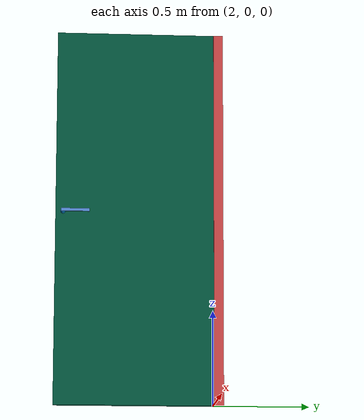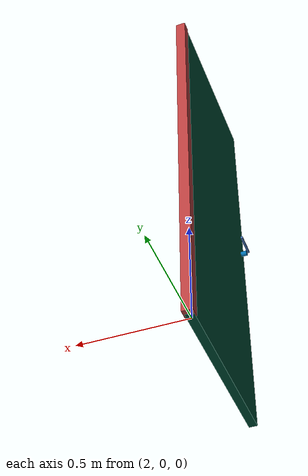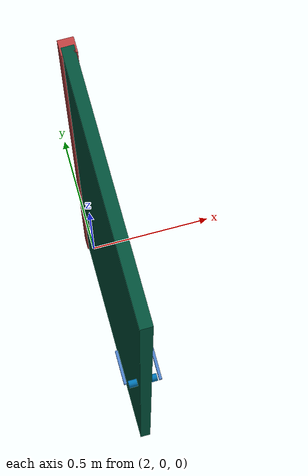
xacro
<?xml version="1.0"?>

<robot name="iai_kitchen" xmlns:xacro="http://ros.org/wiki/xacro">

  <xacro:include filename="$(find suturo_resources)/urdf/urdf_components/suturo_door.urdf.xacro"/>

  <xacro:property name="pi" value="3.1415926535897931" />
  <xacro:property name="simulated" value="true" />
  <xacro:property name="include_wall_7" value="false"/>
  <xacro:macro name="sphere_inertia" params="radius mass">
    <inertial>
      <origin xyz="0.0 0.0 0.0" rpy="0 0 0"/>
      <mass value="1"/>
      <inertia
          ixx="1" ixy="0.0" ixz="0.0"
          iyy="1" iyz="0.0"
          izz="1"/>
    </inertial>
  </xacro:macro>

  <link name="room_link">
    <xacro:sphere_inertia radius="0" mass="0"/>
  </link>
  <xacro:if value="${simulated}">
    <link name="world"/>
    <joint name="world_room_joint" type="fixed">
      <origin xyz="0.0 0.03 0 " rpy="0 0 0" />
      <parent link="world"/>
      <child link="room_link"/>
    </joint>
  </xacro:if>

  <xacro:suturo_door name="suturo_door_area" parent="room_link"
			height="2"
            width="0.86"
            depth="0.04"
            x="2"
            y="0"
            z="1.0"
            zrot="${-0.5 * pi}"
            door_turn_limit_lower="-1.4"
            door_turn_limit_max="0"
			handle_x= "0.82"
			handle_z="0.02">
  </xacro:suturo_door>

  <gazebo>
    <static>false</static>
  </gazebo>

</robot>

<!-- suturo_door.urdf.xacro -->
<robot name="suturo_door" xmlns:xacro="http://ros.org/wiki/xacro">

  <material name="door_green">
    <color rgba="0 0.31 0.22 1"/>
  </material>

  <material name="hinge_red">
    <color rgba="0.74 0.25 0.25 1"/>
  </material>

  <material name="handle_blue">
    <color rgba="0.3 0.5 0.78 1"/>
  </material>
  <xacro:property name="half_pi" value="1.570796327" />

  <xacro:macro name="suturo_door" params="name parent height width depth x y z zrot door_turn_limit_lower door_turn_limit_max handle_x handle_z">
    <!-- LINKS -->
    <!-- TODO: Remove gravity for door -->

    <link name="${name}:door_center">
      <visual>
        <material name="door_green"/>
        <origin xyz="${width/2} 0 0" rpy="0 0 0" />
        <geometry>
          <box size="${width} ${depth} ${height}" />
        </geometry>
      </visual>
      <collision>
        <origin xyz="${width/2} 0 0" rpy="0 0 0" />
        <geometry>
          <box size="${width} ${depth} ${height}" />
        </geometry>
      </collision>
      <inertial>
        <origin xyz="0 0 0" rpy="0 0 0"/>
        <mass value="1.0"/>
        <inertia ixx="0.1" ixy="0.0" ixz="0.0" iyy="0.1" iyz="0.0" izz="0.1"/>
      </inertial>
    </link>

    <link name="${name}:door_hinge">
      <visual>
        <material name="hinge_red"/>
        <origin xyz="0 0 0" rpy="0 0 0" />
        <geometry>
          <box size="0.05 0.05 ${height}" />
        </geometry>
      </visual>
      <collision>
        <origin xyz="0 0 0" rpy="0 0 0" />
        <geometry>
          <box size="0.05 0.05 ${height}" />
        </geometry>
      </collision>
      <inertial>
        <origin xyz="0 0 0" rpy="0 0 0"/>
        <mass value="1.0"/>
        <inertia ixx="0.1" ixy="0.0" ixz="0.0" iyy="0.1" iyz="0.0" izz="0.1"/>
      </inertial>
    </link>

	<link name="${name}:door_handle_link">
      <visual >
        <origin xyz="0.0 0.0 0.0" rpy="0 0 0" />
        <geometry name="handle_blue">
          <cylinder radius="0.013" length="0.10" />
        </geometry>
      </visual>
      <collision >
        <origin xyz="0.0 0.0 0.0" rpy="0 0 0" />
        <geometry name="handle_collision_geom">
          <cylinder radius="0.013" length="0.10" />
        </geometry>
      </collision>
      <inertial>
        <origin xyz="0 0 0" rpy="0 0 0"/>
        <mass value="1.0"/>
        <inertia ixx="0.1" ixy="0.0" ixz="0.0" iyy="0.1" iyz="0.0" izz="0.1"/>
      </inertial>
    </link>
    <gazebo reference="${name}:door_handle_link">
      <turnGravityOff>true</turnGravityOff>
    </gazebo>

    <link name="${name}:door_handle_outside">

      <sphere_inertia radius="0" mass="0"/>
      <visual>
	<material name="handle_blue"/>
        <origin xyz="0 0 0" rpy="0 0 0" />
        <geometry>
          <box size="0.015 0.15 0.01" />
        </geometry>
      </visual>
      <collision>
        <origin xyz="0 0 0" rpy="0 0 0" />
        <geometry>
          <box size="0.015 0.15 0.01" />
        </geometry>
      </collision>
      <inertial>
        <origin xyz="0 0 0" rpy="0 0 0"/>
        <mass value="1.0"/>
        <inertia ixx="0.1" ixy="0.0" ixz="0.0" iyy="0.1" iyz="0.0" izz="0.1"/>
      </inertial>
    </link>
    <gazebo reference="${name}:door_handle_outside">
      <turnGravityOff>true</turnGravityOff>
    </gazebo>

    <link name="${name}:door_handle_inside">

      <sphere_inertia radius="0" mass="0"/>
      <visual>
	<material name="handle_blue"/>
        <origin xyz="0 0 0" rpy="0 0 0" />
        <geometry>
          <box size="0.012 0.12 0.01" />
        </geometry>
      </visual>
      <collision>
        <origin xyz="0 0 0" rpy="0 0 0" />
        <geometry>
          <box size="0.015 0.15 0.01" />
        </geometry>
      </collision>
      <inertial>
        <origin xyz="0 0 0" rpy="0 0 0"/>
        <mass value="1.0"/>
        <inertia ixx="0.1" ixy="0.0" ixz="0.0" iyy="0.1" iyz="0.0" izz="0.1"/>
      </inertial>
    </link>
    <gazebo reference="${name}:door_handle_inside">
      <turnGravityOff>true</turnGravityOff>
    </gazebo>

    <!-- JOINTS -->

    <joint name="${name}:door_origin_revolute_joint" type="revolute">
      <axis xyz="0 0 1"/>
      <limit effort="100" lower="${door_turn_limit_lower}" upper="${door_turn_limit_max}" velocity="10"/>
      <origin xyz="0 0 0" rpy="0 0 ${zrot}" />
      <parent link="${name}:door_hinge"/>
      <child link="${name}:door_center"/>
    </joint>

    <joint name="${name}:door_hinge_joint" type="fixed">
      <axis xyz="0 0 0"/>
      <limit effort="1" lower="0" upper="1.5708" velocity="1"/>
      <origin xyz="${x} ${y} ${z}" rpy="0 0 0" />
      <parent link="${parent}"/>
      <child link="${name}:door_hinge"/>
    </joint>

    <joint name="${name}:door_handle_joint" type="revolute" >
      <axis xyz="0 0 1"/>
      <limit effort="1" lower="0" upper="${pi/5}" velocity="1"/>
      <origin xyz="${handle_x} 0 ${handle_z}" rpy="${pi/2} 0 0" />
      <parent link="${name}:door_center"/>
	  <child link="${name}:door_handle_link"/>
    </joint>

    <joint name="${name}:door_handle_inside_joint" type="fixed">
      <origin xyz="-0.0635 0 0.06" rpy="0 0 ${pi/2}" />
      <parent link="${name}:door_handle_link"/>
      <child link="${name}:door_handle_inside"/>
    </joint>

    <joint name="${name}:door_handle_outside_joint" type="fixed">
      <origin xyz="-0.0635 0 -0.06" rpy="0 ${pi} ${pi/2}" />
      <parent link="${name}:door_handle_link"/>
      <child link="${name}:door_handle_outside"/>
    </joint>

  </xacro:macro>
</robot>
